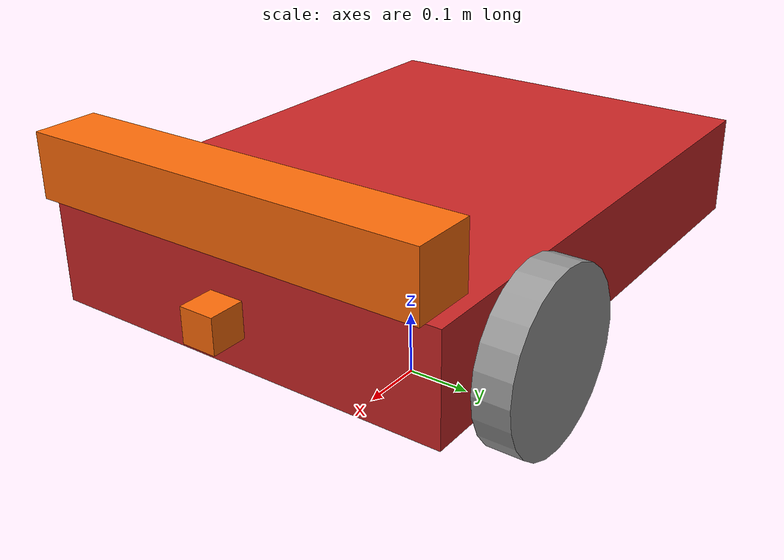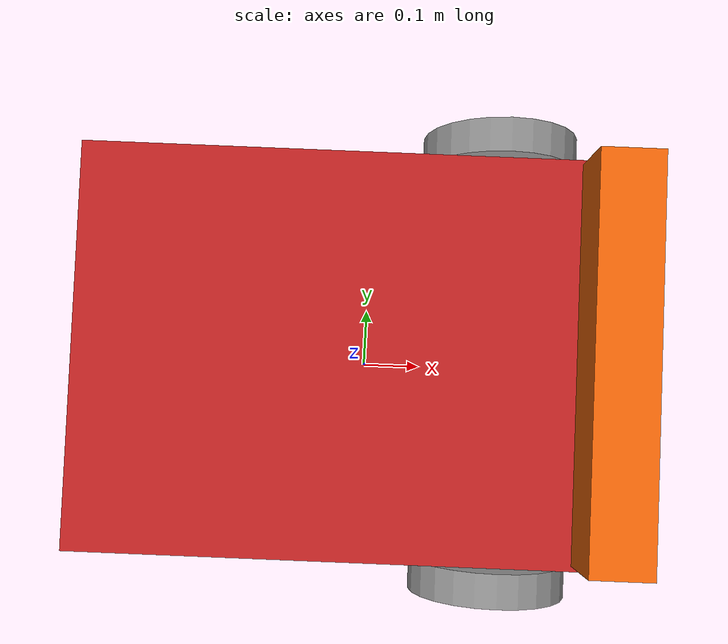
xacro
<?xml version="1.0"?>
<robot name="servomotor_diff_robot" xmlns:xacro="http://ros.org/wiki/xacro">
  <xacro:arg name="pi" default="3.14159"/>
  <xacro:include filename="$(find my_ugv_description)/urdf/servomotor_diff_robot_gazebo.xacro"/>

  <!-- Robot Gazebo Controller -->
  <xacro:servomotor_controller />

  <link name="base_footprint"/>

  <joint name="base_joint" type="fixed">
    <parent link="base_footprint"/>
    <child link="base_link"/>
    <origin xyz="0 0 0.15" rpy="0 0 0"/>
  </joint>

  <link name="base_link">
    <visual>
      <origin xyz="-0.03 0 0.12" rpy="0 0 0"/>
      <geometry>
        <box size="0.80 0.60 0.15" />
      </geometry>
    </visual>
    <collision>
      <origin xyz="-0.03 0 0.12" rpy="0 0 0"/>
      <geometry>
        <box size="0.7 0.55 0.12"/>
      </geometry>
    </collision>
    <inertial>
      <origin xyz="0 0 0.1" rpy="0 0 0"/> <!-- Note: A plugin is used to move the robot. To stabilize the mobile robot due to the servo_ link has inertia, a larger mass and inertia are used -->
      <mass value="5"/>
      <inertia ixx=".006" ixy="0" ixz="0"
               iyy=".003375" iyz="0"
               izz=".096" />
    </inertial>
  </link>

  <!-- Wheels definition (joints and links) -->
  <joint name="wheel_left_joint" type="continuous">
    <parent link="base_link"/>
    <child link="wheel_left_link"/>
    <origin xyz=".20 0.33 0.09" rpy="0 0 0"/>
    <axis xyz="0 1 0"/>
  </joint>
  <link name="wheel_left_link">
    <visual>
      <origin xyz="0 0 0" rpy="1.5707 0 0"/>
      <geometry>
         <cylinder radius="0.12" length="0.05"/>
      </geometry>
    </visual>
    <collision>
      <origin xyz="0 0 .12" rpy="0 0 0"/>
      <geometry>
      <cylinder radius="0.12" length="0.05"/>
      </geometry>
    </collision>
    <inertial>
      <origin xyz="0 0 0" />
      <mass value="1" />
      <inertia ixx=".0038" ixy="0" ixz="0"
               iyy=".0038" iyz="0"
               izz=".0072" />
      </inertial>
  </link>

  <joint name="wheel_right_joint" type="continuous">
    <parent link="base_link"/>
    <child link="wheel_right_link"/>
    <origin xyz=".20 -0.33 .09" rpy="0 0 0"/>
    <axis xyz="0 1 0"/>
  </joint>

  <link name="wheel_right_link">
    <visual>
      <origin xyz="0 0 0" rpy="1.57 0 0"/>
      <geometry>
        <cylinder radius="0.12" length="0.05"/>
      </geometry>
    </visual>
    <collision>
      <origin xyz="0 0 .12" rpy="0 0 0"/>
      <geometry>
        <cylinder radius="0.12" length="0.05"/>
      </geometry>
    </collision>
    <inertial>
      <origin xyz="0 0 0" />
      <mass value="1" />
      <inertia ixx=".0038" ixy="0" ixz="0"
               iyy=".0038" iyz="0"
               izz=".0072" />
      </inertial>
  </link>

  <!-- Caster wheel definition (joint and link) -->
  <joint name="caster_joint" type="fixed">
    <parent link="base_link"/>
    <child link="caster_link"/>
    <origin xyz="-0.32 0 .02" rpy="0 0 0"/>
  </joint>
  <link name="caster_link">
    <visual>
      <origin xyz="0 0 .02" rpy="0 0 0"/>
      <geometry>
        <sphere radius="0.04"/>
      </geometry>
    </visual>
    <collision>
      <origin xyz="0 0 0" rpy="0 0 0"/>
      <geometry>
        <sphere radius="0.04"/>
      </geometry>
    </collision>
    <inertial>
      <origin xyz="0 0 0" />
      <mass value=".3" />
      <inertia ixx=".00019" ixy="0" ixz="0" iyy="0.00019" iyz="0" izz=".00019" />
    </inertial>
  </link>

  <!-- conveyor and CAMERA definition -->
  <!-- Conveyor (joint, link and transmission) -->
  <joint name="servo_joint" type="prismatic">
    <origin xyz="0.35 0 0.25" rpy="0 0 0"/>
    <parent link="base_link"/>
    <child link="servo_link"/>
    <axis xyz="1 0 0"/>
    <dynamics damping="0.001" friction="0.0"/>
   <limit effort="1000.0" lower="-0.7" upper="0" velocity="0.5"/>
  </joint>

  <link name="servo_link">
    <visual>
      <origin xyz="0 0 0" rpy="0 0 0"/>
      <geometry>
        <box size="0.09 0.58 0.09"/>
      </geometry>
      <material name="orange"/> <!--Color in RViz-->
    </visual>

    <collision>
      <origin xyz="0 0 0" rpy="0 0 0"/>
      <geometry>
        <box size="0.09 0.58 0.09"/>
      </geometry>
    </collision>

    <inertial> <!-- The inertial tag must be correctly set up to obtain the desired link behavior -->
      <origin xyz="0 0 0" />
      <mass value="0.1" />
      <inertia ixx=".00013" ixy="0" ixz="0" iyy=".0028" iyz="0" izz=".0028" />
    </inertial>
  </link>

  <transmission name="tran">
    <type>transmission_interface/SimpleTransmission</type>
    <joint name="servo_joint">
      <hardwareInterface>hardware_interface/EffortJointInterface</hardwareInterface>
    </joint>
    <actuator name="motor">
      <hardwareInterface>hardware_interface/EffortJointInterface</hardwareInterface>
      <mechanicalReduction>1</mechanicalReduction><!-- This tag does not any change in simulation -->
    </actuator>
  </transmission>

  <!-- The joint and link of the camera. Note: Both link name and joint name must be the same as the ones used in the plugin -->
  <joint name="camera_rgb_optical_joint" type="fixed">
    <origin xyz="0.4 0 .12" rpy="0 0 0"/> <!-- X axis is considered as the optical axis -->
    <parent link="base_link"/>
    <child link="camera_rgb_frame"/>
  </joint>
  <link name="camera_rgb_frame">
    <visual>
      <origin xyz="0 0 0" rpy="0 0 0"/>
      <geometry>
        <box size="0.05 0.05 0.05"/>
      </geometry>
      <material name="orange"/> <!--Color in RViz-->
    </visual>

    <collision>
      <origin xyz="0 0 0" rpy="0 0 0"/>
      <geometry>
        <box size="0.05 0.05 0.05"/>
      </geometry>
    </collision>
    <!-- Since a sensor is used, the inertial tag can be ommited -->
  </link>

</robot>

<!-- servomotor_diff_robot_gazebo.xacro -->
<robot name="servomotor_diff_robot" xmlns:xacro="http://ros.org/wiki/xacro">
  <xacro:arg name="camera_visual" default="true"/> <!-- With true, what the camera sees is shown en Gazebo-->
  <xacro:arg name="robot_ns" default="servo"/> <!-- The namespace must coincide with the one given in "*.yaml" and "*.launch" files -->

  <material name="orange"> <!-- Custom color (for RViz) -->
    <color rgba="${255/255} ${108/255} ${10/255} 1.0"/>
  </material>

  <gazebo reference="base_link">
    <material>Gazebo/Red</material> <!-- Color of the base link in Gazebo -->
  </gazebo>

  <gazebo reference="wheel_left_link"> <!-- Physical properties setup -->
    <mu1>0.15</mu1>
    <mu2>0.15</mu2>
    <kp>1000000.0</kp>
    <kd>100.0</kd>
    <minDepth>0.0</minDepth>
    <maxVel>1.0</maxVel>
    <fdir1>1 0 0</fdir1>
    <material>Gazebo/Grey</material>
  </gazebo>

  <gazebo reference="wheel_right_link">
    <mu1>0.15</mu1>
    <mu2>0.15</mu2>
    <kp>1000000.0</kp>
    <kd>100.0</kd>
    <minDepth>0.0</minDepth>
    <maxVel>1.0</maxVel>
    <fdir1>1 0 0</fdir1>
    <material>Gazebo/Grey</material>
  </gazebo>

  <gazebo reference="caster_link">
    <mu1>0.001</mu1>
    <mu2>0.001</mu2>
    <kp>1000000.0</kp>
    <kd>100.0</kd>
    <minDepth>0.001</minDepth>
    <maxVel>1.0</maxVel>
    <material>Gazebo/White</material>
  </gazebo>

  <gazebo reference="servo_link">
    <material>Gazebo/Gold</material>
  </gazebo>

  <gazebo>
    <plugin name="diff_controller" filename="libgazebo_ros_diff_drive.so"> <!-- Plugin for a differential mobile robot -->
      <commandTopic>cmd_vel</commandTopic>
      <odometryTopic>odom</odometryTopic>
      <odometryFrame>odom</odometryFrame>
      <odometrySource>world</odometrySource> <!-- world or encoder -->
      <publishOdomTF>true</publishOdomTF> <!-- Publish the fixed frame called odom, default = true-->
      <robotBaseFrame>base_footprint</robotBaseFrame>
      <publishWheelTF>true</publishWheelTF> <!-- default = false. To show the spining wheels attached to the robot in Rviz -->
      <publishTf>true</publishTf> <!-- default = true-->
      <publishWheelJointState>true</publishWheelJointState>
      <legacyMode>false</legacyMode>
      <updateRate>30</updateRate>
      <leftJoint>wheel_left_joint</leftJoint>
      <rightJoint>wheel_right_joint</rightJoint>
      <wheelSeparation>0.4</wheelSeparation>
      <wheelDiameter>0.12</wheelDiameter>
      <wheelAcceleration>1</wheelAcceleration>
      <wheelTorque>15</wheelTorque>
      <rosDebugLevel>na</rosDebugLevel>
    </plugin>
  </gazebo>

  <gazebo reference="camera_rgb_frame">
    <sensor type="camera" name="Pi_camera">
      <always_on>true</always_on>
      <visualize>$(arg camera_visual)</visualize>
      <camera>
          <horizontal_fov>1.085595</horizontal_fov>
          <image>
              <width>800</width>
              <height>800</height>
              <format>R8G8B8</format>
          </image>
          <clip>
              <near>0.03</near>
              <far>300</far>
          </clip>
      </camera>
      <plugin name="camera_controller" filename="libgazebo_ros_camera.so"> <!-- Plugin for a monocular camera -->
        <alwaysOn>true</alwaysOn>
        <updateRate>30.0</updateRate>
        <cameraName>camera</cameraName>
        <frameName>camera_rgb_optical_joint</frameName>
        <imageTopicName>rgb/image_raw</imageTopicName>
        <cameraInfoTopicName>rgb/camera_info</cameraInfoTopicName>
        <hackBaseline>0.07</hackBaseline>
        <distortionK1>0.0</distortionK1>
        <distortionK2>0.0</distortionK2>
        <distortionK3>0.0</distortionK3>
        <distortionT1>0.0</distortionT1>
        <distortionT2>0.0</distortionT2>
      </plugin>
    </sensor>
  </gazebo>

 <!-- ros_control plugin -->
 <xacro:macro name="servomotor_controller">
  <gazebo>
    <plugin name="gazebo_ros_control" filename="libgazebo_ros_control.so">
      <robotNamespace>$(arg robot_ns)</robotNamespace>
      <robotSimType>gazebo_ros_control/DefaultRobotHWSim</robotSimType>
      <legacyModeNS>true</legacyModeNS>
    </plugin>
  </gazebo>
 </xacro:macro>

</robot>
